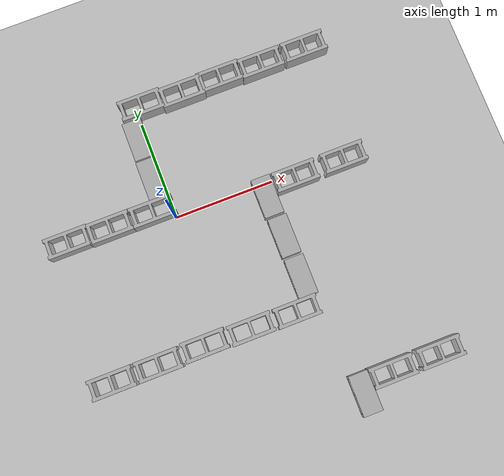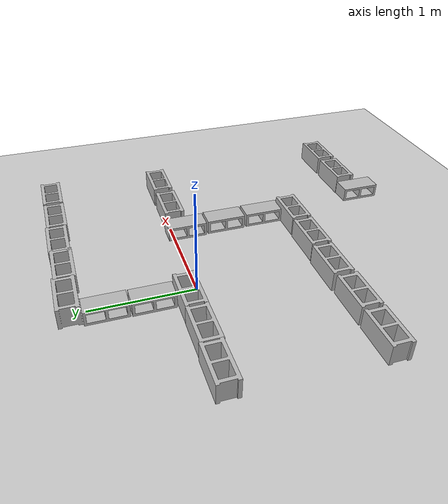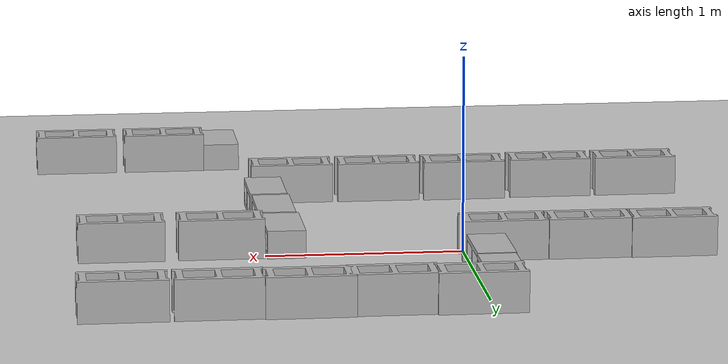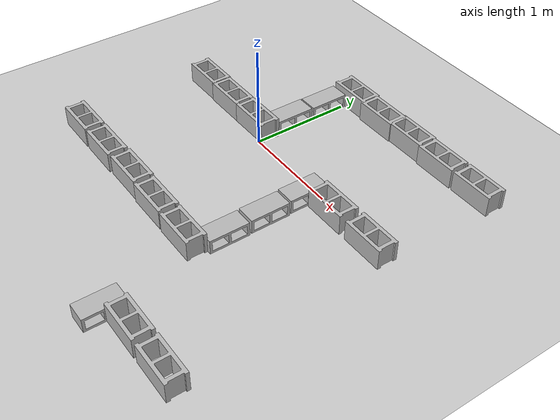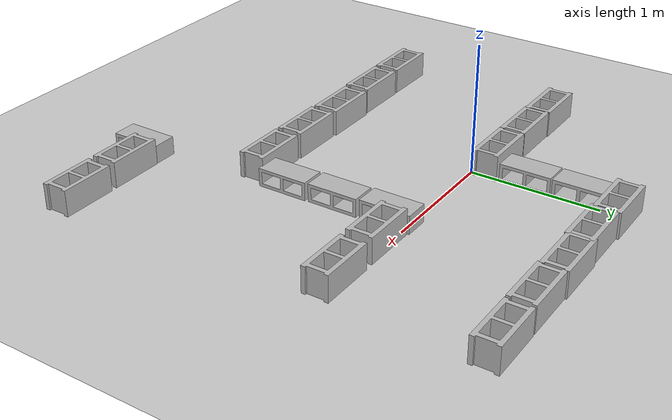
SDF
<sdf version="1.7">
 <world name="default">
  <model name="ground_plane">
   <static>1</static>
   <link name="link">
    <collision name="collision">
     <geometry><plane><normal>0 0 1</normal><size>100 100</size></plane></geometry>
     <surface>
      <contact><collide_bitmask>65535</collide_bitmask></contact>
      <friction><ode><mu>100</mu><mu2>50</mu2></ode></friction>
     </surface>
    </collision>
    <visual name="visual">
     <cast_shadows>0</cast_shadows>
     <geometry><plane><normal>0 0 1</normal><size>100 100</size></plane></geometry>
     <material>
      <script><uri>file://media/materials/scripts/gazebo.material</uri><name>Gazebo/Grey</name></script>
     </material>
    </visual>
   </link>
  </model>
  <model name="cinder_block">
   <link name="link">
    <inertial>
     <pose>0 0 0.1016 0 -0 0</pose>
     <mass>5</mass>
     <inertia>
      <ixx>0.028705</ixx>
      <ixy>0</ixy>
      <iyy>0.073708</iyy>
      <ixz>0</ixz>
      <iyz>0</iyz>
      <izz>0.06908</izz>
     </inertia>
    </inertial>
    <visual name="visual">
     <geometry><mesh><uri>model://cinder_block/meshes/cinder_block.dae</uri></mesh></geometry>
    </visual>
    <collision name="left">
     <pose>0 -0.08465 0.1016 0 -0 0</pose>
     <geometry><box><size>0.43495 0.0339 0.2032</size></box></geometry>
     <surface>
      <contact><ode><max_vel>0.1</max_vel><min_depth>0.001</min_depth></ode></contact>
      <friction><ode><mu>1</mu><mu2>1</mu2></ode></friction>
     </surface>
    </collision>
    <collision name="right">
     <pose>0 0.08465 0.1016 0 -0 0</pose>
     <geometry><box><size>0.43495 0.0339 0.2032</size></box></geometry>
     <surface>
      <contact><ode><max_vel>0.1</max_vel><min_depth>0.001</min_depth></ode></contact>
      <friction><ode><mu>1</mu><mu2>1</mu2></ode></friction>
     </surface>
    </collision>
    <collision name="front">
     <pose>0.18625 0 0.1016 0 -0 0</pose>
     <geometry><box><size>0.0339 0.1354 0.203</size></box></geometry>
     <surface>
      <contact><ode><max_vel>0.1</max_vel><min_depth>0.001</min_depth></ode></contact>
      <friction><ode><mu>1</mu><mu2>1</mu2></ode></friction>
     </surface>
    </collision>
    <collision name="middle">
     <pose>0 0 0.1016 0 -0 0</pose>
     <geometry><box><size>0.0339 0.1354 0.203</size></box></geometry>
     <surface>
      <contact><ode><max_vel>0.1</max_vel><min_depth>0.001</min_depth></ode></contact>
      <friction><ode><mu>1</mu><mu2>1</mu2></ode></friction>
     </surface>
    </collision>
    <collision name="back">
     <pose>-0.18625 0 0.1016 0 -0 0</pose>
     <geometry><box><size>0.0339 0.1354 0.203</size></box></geometry>
     <surface>
      <contact><ode><max_vel>0.1</max_vel><min_depth>0.001</min_depth></ode></contact>
      <friction><ode><mu>1</mu><mu2>1</mu2></ode></friction>
     </surface>
    </collision>
   </link>
   <pose>-0.166078 -1.2573 0 0 -0 0</pose>
  </model>
  <model name="cinder_block_0">
   <link name="link">
    <inertial>
     <pose>0 0 0.1016 0 -0 0</pose>
     <mass>5</mass>
     <inertia>
      <ixx>0.028705</ixx>
      <ixy>0</ixy>
      <iyy>0.073708</iyy>
      <ixz>0</ixz>
      <iyz>0</iyz>
      <izz>0.06908</izz>
     </inertia>
    </inertial>
    <visual name="visual">
     <geometry><mesh><uri>model://cinder_block/meshes/cinder_block.dae</uri></mesh></geometry>
    </visual>
    <collision name="left">
     <pose>0 -0.08465 0.1016 0 -0 0</pose>
     <geometry><box><size>0.43495 0.0339 0.2032</size></box></geometry>
     <surface>
      <contact><ode><max_vel>0.1</max_vel><min_depth>0.001</min_depth></ode></contact>
      <friction><ode><mu>1</mu><mu2>1</mu2></ode></friction>
     </surface>
    </collision>
    <collision name="right">
     <pose>0 0.08465 0.1016 0 -0 0</pose>
     <geometry><box><size>0.43495 0.0339 0.2032</size></box></geometry>
     <surface>
      <contact><ode><max_vel>0.1</max_vel><min_depth>0.001</min_depth></ode></contact>
      <friction><ode><mu>1</mu><mu2>1</mu2></ode></friction>
     </surface>
    </collision>
    <collision name="front">
     <pose>0.18625 0 0.1016 0 -0 0</pose>
     <geometry><box><size>0.0339 0.1354 0.203</size></box></geometry>
     <surface>
      <contact><ode><max_vel>0.1</max_vel><min_depth>0.001</min_depth></ode></contact>
      <friction><ode><mu>1</mu><mu2>1</mu2></ode></friction>
     </surface>
    </collision>
    <collision name="middle">
     <pose>0 0 0.1016 0 -0 0</pose>
     <geometry><box><size>0.0339 0.1354 0.203</size></box></geometry>
     <surface>
      <contact><ode><max_vel>0.1</max_vel><min_depth>0.001</min_depth></ode></contact>
      <friction><ode><mu>1</mu><mu2>1</mu2></ode></friction>
     </surface>
    </collision>
    <collision name="back">
     <pose>-0.18625 0 0.1016 0 -0 0</pose>
     <geometry><box><size>0.0339 0.1354 0.203</size></box></geometry>
     <surface>
      <contact><ode><max_vel>0.1</max_vel><min_depth>0.001</min_depth></ode></contact>
      <friction><ode><mu>1</mu><mu2>1</mu2></ode></friction>
     </surface>
    </collision>
   </link>
   <pose>-0.632446 -1.26918 0 0 -0 0</pose>
  </model>
  <model name="cinder_block_1">
   <link name="link">
    <inertial>
     <pose>0 0 0.1016 0 -0 0</pose>
     <mass>5</mass>
     <inertia>
      <ixx>0.028705</ixx>
      <ixy>0</ixy>
      <iyy>0.073708</iyy>
      <ixz>0</ixz>
      <iyz>0</iyz>
      <izz>0.06908</izz>
     </inertia>
    </inertial>
    <visual name="visual">
     <geometry><mesh><uri>model://cinder_block/meshes/cinder_block.dae</uri></mesh></geometry>
    </visual>
    <collision name="left">
     <pose>0 -0.08465 0.1016 0 -0 0</pose>
     <geometry><box><size>0.43495 0.0339 0.2032</size></box></geometry>
     <surface>
      <contact><ode><max_vel>0.1</max_vel><min_depth>0.001</min_depth></ode></contact>
      <friction><ode><mu>1</mu><mu2>1</mu2></ode></friction>
     </surface>
    </collision>
    <collision name="right">
     <pose>0 0.08465 0.1016 0 -0 0</pose>
     <geometry><box><size>0.43495 0.0339 0.2032</size></box></geometry>
     <surface>
      <contact><ode><max_vel>0.1</max_vel><min_depth>0.001</min_depth></ode></contact>
      <friction><ode><mu>1</mu><mu2>1</mu2></ode></friction>
     </surface>
    </collision>
    <collision name="front">
     <pose>0.18625 0 0.1016 0 -0 0</pose>
     <geometry><box><size>0.0339 0.1354 0.203</size></box></geometry>
     <surface>
      <contact><ode><max_vel>0.1</max_vel><min_depth>0.001</min_depth></ode></contact>
      <friction><ode><mu>1</mu><mu2>1</mu2></ode></friction>
     </surface>
    </collision>
    <collision name="middle">
     <pose>0 0 0.1016 0 -0 0</pose>
     <geometry><box><size>0.0339 0.1354 0.203</size></box></geometry>
     <surface>
      <contact><ode><max_vel>0.1</max_vel><min_depth>0.001</min_depth></ode></contact>
      <friction><ode><mu>1</mu><mu2>1</mu2></ode></friction>
     </surface>
    </collision>
    <collision name="back">
     <pose>-0.18625 0 0.1016 0 -0 0</pose>
     <geometry><box><size>0.0339 0.1354 0.203</size></box></geometry>
     <surface>
      <contact><ode><max_vel>0.1</max_vel><min_depth>0.001</min_depth></ode></contact>
      <friction><ode><mu>1</mu><mu2>1</mu2></ode></friction>
     </surface>
    </collision>
   </link>
   <pose>0.293561 -1.26789 0 0 -0 0</pose>
  </model>
  <model name="cinder_block_2">
   <link name="link">
    <inertial>
     <pose>0 0 0.1016 0 -0 0</pose>
     <mass>5</mass>
     <inertia>
      <ixx>0.028705</ixx>
      <ixy>0</ixy>
      <iyy>0.073708</iyy>
      <ixz>0</ixz>
      <iyz>0</iyz>
      <izz>0.06908</izz>
     </inertia>
    </inertial>
    <visual name="visual">
     <geometry><mesh><uri>model://cinder_block/meshes/cinder_block.dae</uri></mesh></geometry>
    </visual>
    <collision name="left">
     <pose>0 -0.08465 0.1016 0 -0 0</pose>
     <geometry><box><size>0.43495 0.0339 0.2032</size></box></geometry>
     <surface>
      <contact><ode><max_vel>0.1</max_vel><min_depth>0.001</min_depth></ode></contact>
      <friction><ode><mu>1</mu><mu2>1</mu2></ode></friction>
     </surface>
    </collision>
    <collision name="right">
     <pose>0 0.08465 0.1016 0 -0 0</pose>
     <geometry><box><size>0.43495 0.0339 0.2032</size></box></geometry>
     <surface>
      <contact><ode><max_vel>0.1</max_vel><min_depth>0.001</min_depth></ode></contact>
      <friction><ode><mu>1</mu><mu2>1</mu2></ode></friction>
     </surface>
    </collision>
    <collision name="front">
     <pose>0.18625 0 0.1016 0 -0 0</pose>
     <geometry><box><size>0.0339 0.1354 0.203</size></box></geometry>
     <surface>
      <contact><ode><max_vel>0.1</max_vel><min_depth>0.001</min_depth></ode></contact>
      <friction><ode><mu>1</mu><mu2>1</mu2></ode></friction>
     </surface>
    </collision>
    <collision name="middle">
     <pose>0 0 0.1016 0 -0 0</pose>
     <geometry><box><size>0.0339 0.1354 0.203</size></box></geometry>
     <surface>
      <contact><ode><max_vel>0.1</max_vel><min_depth>0.001</min_depth></ode></contact>
      <friction><ode><mu>1</mu><mu2>1</mu2></ode></friction>
     </surface>
    </collision>
    <collision name="back">
     <pose>-0.18625 0 0.1016 0 -0 0</pose>
     <geometry><box><size>0.0339 0.1354 0.203</size></box></geometry>
     <surface>
      <contact><ode><max_vel>0.1</max_vel><min_depth>0.001</min_depth></ode></contact>
      <friction><ode><mu>1</mu><mu2>1</mu2></ode></friction>
     </surface>
    </collision>
   </link>
   <pose>0.755754 -1.27256 0 0 -0 0</pose>
  </model>
  <model name="cinder_block_2_0">
   <link name="link">
    <inertial>
     <pose>0 0 0.071438 0 -0 0</pose>
     <mass>5</mass>
     <inertia>
      <ixx>0.06908</ixx>
      <ixy>0</ixy>
      <iyy>0.028705</iyy>
      <ixz>0</ixz>
      <iyz>0</iyz>
      <izz>0.073708</izz>
     </inertia>
    </inertial>
    <visual name="visual">
     <geometry><mesh><uri>model://cinder_block_2/meshes/cinder_block.dae</uri></mesh></geometry>
    </visual>
    <collision name="top">
     <pose>0 0 0.130175 0 -0 0</pose>
     <geometry><box><size>0.19368 0.396875 0.0254</size></box></geometry>
     <surface>
      <contact><ode><max_vel>0.1</max_vel><min_depth>0.001</min_depth></ode></contact>
      <friction><ode><mu>1</mu><mu2>1</mu2></ode></friction>
     </surface>
    </collision>
    <collision name="bottom">
     <pose>0 0 0.0127 0 -0 0</pose>
     <geometry><box><size>0.19368 0.396875 0.0254</size></box></geometry>
     <surface>
      <contact><ode><max_vel>0.1</max_vel><min_depth>0.001</min_depth></ode></contact>
      <friction><ode><mu>1</mu><mu2>1</mu2></ode></friction>
     </surface>
    </collision>
    <collision name="left">
     <pose>0 -0.185738 0.071438 0 -0 0</pose>
     <geometry><box><size>0.19368 0.0254 0.092075</size></box></geometry>
     <surface>
      <contact><ode><max_vel>0.1</max_vel><min_depth>0.001</min_depth></ode></contact>
      <friction><ode><mu>1</mu><mu2>1</mu2></ode></friction>
     </surface>
    </collision>
    <collision name="right">
     <pose>0 0.185738 0.071438 0 -0 0</pose>
     <geometry><box><size>0.19368 0.0254 0.092075</size></box></geometry>
     <surface>
      <contact><ode><max_vel>0.1</max_vel><min_depth>0.001</min_depth></ode></contact>
      <friction><ode><mu>1</mu><mu2>1</mu2></ode></friction>
     </surface>
    </collision>
    <collision name="middle">
     <pose>0 0 0.071438 0 -0 0</pose>
     <geometry><box><size>0.19368 0.0254 0.092075</size></box></geometry>
     <surface>
      <contact><ode><max_vel>0.1</max_vel><min_depth>0.001</min_depth></ode></contact>
      <friction><ode><mu>1</mu><mu2>1</mu2></ode></friction>
     </surface>
    </collision>
   </link>
   <pose>0.915039 -0.977644 0 0 -0 0</pose>
  </model>
  <model name="cinder_block_2_1">
   <link name="link">
    <inertial>
     <pose>0 0 0.071438 0 -0 0</pose>
     <mass>5</mass>
     <inertia>
      <ixx>0.06908</ixx>
      <ixy>0</ixy>
      <iyy>0.028705</iyy>
      <ixz>0</ixz>
      <iyz>0</iyz>
      <izz>0.073708</izz>
     </inertia>
    </inertial>
    <visual name="visual">
     <geometry><mesh><uri>model://cinder_block_2/meshes/cinder_block.dae</uri></mesh></geometry>
    </visual>
    <collision name="top">
     <pose>0 0 0.130175 0 -0 0</pose>
     <geometry><box><size>0.19368 0.396875 0.0254</size></box></geometry>
     <surface>
      <contact><ode><max_vel>0.1</max_vel><min_depth>0.001</min_depth></ode></contact>
      <friction><ode><mu>1</mu><mu2>1</mu2></ode></friction>
     </surface>
    </collision>
    <collision name="bottom">
     <pose>0 0 0.0127 0 -0 0</pose>
     <geometry><box><size>0.19368 0.396875 0.0254</size></box></geometry>
     <surface>
      <contact><ode><max_vel>0.1</max_vel><min_depth>0.001</min_depth></ode></contact>
      <friction><ode><mu>1</mu><mu2>1</mu2></ode></friction>
     </surface>
    </collision>
    <collision name="left">
     <pose>0 -0.185738 0.071438 0 -0 0</pose>
     <geometry><box><size>0.19368 0.0254 0.092075</size></box></geometry>
     <surface>
      <contact><ode><max_vel>0.1</max_vel><min_depth>0.001</min_depth></ode></contact>
      <friction><ode><mu>1</mu><mu2>1</mu2></ode></friction>
     </surface>
    </collision>
    <collision name="right">
     <pose>0 0.185738 0.071438 0 -0 0</pose>
     <geometry><box><size>0.19368 0.0254 0.092075</size></box></geometry>
     <surface>
      <contact><ode><max_vel>0.1</max_vel><min_depth>0.001</min_depth></ode></contact>
      <friction><ode><mu>1</mu><mu2>1</mu2></ode></friction>
     </surface>
    </collision>
    <collision name="middle">
     <pose>0 0 0.071438 0 -0 0</pose>
     <geometry><box><size>0.19368 0.0254 0.092075</size></box></geometry>
     <surface>
      <contact><ode><max_vel>0.1</max_vel><min_depth>0.001</min_depth></ode></contact>
      <friction><ode><mu>1</mu><mu2>1</mu2></ode></friction>
     </surface>
    </collision>
   </link>
   <pose>0.90795 -0.557757 0 0 -0 0</pose>
  </model>
  <model name="cinder_block_2_2">
   <link name="link">
    <inertial>
     <pose>0 0 0.071438 0 -0 0</pose>
     <mass>5</mass>
     <inertia>
      <ixx>0.06908</ixx>
      <ixy>0</ixy>
      <iyy>0.028705</iyy>
      <ixz>0</ixz>
      <iyz>0</iyz>
      <izz>0.073708</izz>
     </inertia>
    </inertial>
    <visual name="visual">
     <geometry><mesh><uri>model://cinder_block_2/meshes/cinder_block.dae</uri></mesh></geometry>
    </visual>
    <collision name="top">
     <pose>0 0 0.130175 0 -0 0</pose>
     <geometry><box><size>0.19368 0.396875 0.0254</size></box></geometry>
     <surface>
      <contact><ode><max_vel>0.1</max_vel><min_depth>0.001</min_depth></ode></contact>
      <friction><ode><mu>1</mu><mu2>1</mu2></ode></friction>
     </surface>
    </collision>
    <collision name="bottom">
     <pose>0 0 0.0127 0 -0 0</pose>
     <geometry><box><size>0.19368 0.396875 0.0254</size></box></geometry>
     <surface>
      <contact><ode><max_vel>0.1</max_vel><min_depth>0.001</min_depth></ode></contact>
      <friction><ode><mu>1</mu><mu2>1</mu2></ode></friction>
     </surface>
    </collision>
    <collision name="left">
     <pose>0 -0.185738 0.071438 0 -0 0</pose>
     <geometry><box><size>0.19368 0.0254 0.092075</size></box></geometry>
     <surface>
      <contact><ode><max_vel>0.1</max_vel><min_depth>0.001</min_depth></ode></contact>
      <friction><ode><mu>1</mu><mu2>1</mu2></ode></friction>
     </surface>
    </collision>
    <collision name="right">
     <pose>0 0.185738 0.071438 0 -0 0</pose>
     <geometry><box><size>0.19368 0.0254 0.092075</size></box></geometry>
     <surface>
      <contact><ode><max_vel>0.1</max_vel><min_depth>0.001</min_depth></ode></contact>
      <friction><ode><mu>1</mu><mu2>1</mu2></ode></friction>
     </surface>
    </collision>
    <collision name="middle">
     <pose>0 0 0.071438 0 -0 0</pose>
     <geometry><box><size>0.19368 0.0254 0.092075</size></box></geometry>
     <surface>
      <contact><ode><max_vel>0.1</max_vel><min_depth>0.001</min_depth></ode></contact>
      <friction><ode><mu>1</mu><mu2>1</mu2></ode></friction>
     </surface>
    </collision>
   </link>
   <pose>0.896648 -0.140806 0 0 -0 0</pose>
  </model>
  <model name="cinder_block_3">
   <link name="link">
    <inertial>
     <pose>0 0 0.1016 0 -0 0</pose>
     <mass>5</mass>
     <inertia>
      <ixx>0.028705</ixx>
      <ixy>0</ixy>
      <iyy>0.073708</iyy>
      <ixz>0</ixz>
      <iyz>0</iyz>
      <izz>0.06908</izz>
     </inertia>
    </inertial>
    <visual name="visual">
     <geometry><mesh><uri>model://cinder_block/meshes/cinder_block.dae</uri></mesh></geometry>
    </visual>
    <collision name="left">
     <pose>0 -0.08465 0.1016 0 -0 0</pose>
     <geometry><box><size>0.43495 0.0339 0.2032</size></box></geometry>
     <surface>
      <contact><ode><max_vel>0.1</max_vel><min_depth>0.001</min_depth></ode></contact>
      <friction><ode><mu>1</mu><mu2>1</mu2></ode></friction>
     </surface>
    </collision>
    <collision name="right">
     <pose>0 0.08465 0.1016 0 -0 0</pose>
     <geometry><box><size>0.43495 0.0339 0.2032</size></box></geometry>
     <surface>
      <contact><ode><max_vel>0.1</max_vel><min_depth>0.001</min_depth></ode></contact>
      <friction><ode><mu>1</mu><mu2>1</mu2></ode></friction>
     </surface>
    </collision>
    <collision name="front">
     <pose>0.18625 0 0.1016 0 -0 0</pose>
     <geometry><box><size>0.0339 0.1354 0.203</size></box></geometry>
     <surface>
      <contact><ode><max_vel>0.1</max_vel><min_depth>0.001</min_depth></ode></contact>
      <friction><ode><mu>1</mu><mu2>1</mu2></ode></friction>
     </surface>
    </collision>
    <collision name="middle">
     <pose>0 0 0.1016 0 -0 0</pose>
     <geometry><box><size>0.0339 0.1354 0.203</size></box></geometry>
     <surface>
      <contact><ode><max_vel>0.1</max_vel><min_depth>0.001</min_depth></ode></contact>
      <friction><ode><mu>1</mu><mu2>1</mu2></ode></friction>
     </surface>
    </collision>
    <collision name="back">
     <pose>-0.18625 0 0.1016 0 -0 0</pose>
     <geometry><box><size>0.0339 0.1354 0.203</size></box></geometry>
     <surface>
      <contact><ode><max_vel>0.1</max_vel><min_depth>0.001</min_depth></ode></contact>
      <friction><ode><mu>1</mu><mu2>1</mu2></ode></friction>
     </surface>
    </collision>
   </link>
   <pose>1.22059 -0.056694 0 0 -0 0</pose>
  </model>
  <model name="cinder_block_4">
   <link name="link">
    <inertial>
     <pose>0 0 0.1016 0 -0 0</pose>
     <mass>5</mass>
     <inertia>
      <ixx>0.028705</ixx>
      <ixy>0</ixy>
      <iyy>0.073708</iyy>
      <ixz>0</ixz>
      <iyz>0</iyz>
      <izz>0.06908</izz>
     </inertia>
    </inertial>
    <visual name="visual">
     <geometry><mesh><uri>model://cinder_block/meshes/cinder_block.dae</uri></mesh></geometry>
    </visual>
    <collision name="left">
     <pose>0 -0.08465 0.1016 0 -0 0</pose>
     <geometry><box><size>0.43495 0.0339 0.2032</size></box></geometry>
     <surface>
      <contact><ode><max_vel>0.1</max_vel><min_depth>0.001</min_depth></ode></contact>
      <friction><ode><mu>1</mu><mu2>1</mu2></ode></friction>
     </surface>
    </collision>
    <collision name="right">
     <pose>0 0.08465 0.1016 0 -0 0</pose>
     <geometry><box><size>0.43495 0.0339 0.2032</size></box></geometry>
     <surface>
      <contact><ode><max_vel>0.1</max_vel><min_depth>0.001</min_depth></ode></contact>
      <friction><ode><mu>1</mu><mu2>1</mu2></ode></friction>
     </surface>
    </collision>
    <collision name="front">
     <pose>0.18625 0 0.1016 0 -0 0</pose>
     <geometry><box><size>0.0339 0.1354 0.203</size></box></geometry>
     <surface>
      <contact><ode><max_vel>0.1</max_vel><min_depth>0.001</min_depth></ode></contact>
      <friction><ode><mu>1</mu><mu2>1</mu2></ode></friction>
     </surface>
    </collision>
    <collision name="middle">
     <pose>0 0 0.1016 0 -0 0</pose>
     <geometry><box><size>0.0339 0.1354 0.203</size></box></geometry>
     <surface>
      <contact><ode><max_vel>0.1</max_vel><min_depth>0.001</min_depth></ode></contact>
      <friction><ode><mu>1</mu><mu2>1</mu2></ode></friction>
     </surface>
    </collision>
    <collision name="back">
     <pose>-0.18625 0 0.1016 0 -0 0</pose>
     <geometry><box><size>0.0339 0.1354 0.203</size></box></geometry>
     <surface>
      <contact><ode><max_vel>0.1</max_vel><min_depth>0.001</min_depth></ode></contact>
      <friction><ode><mu>1</mu><mu2>1</mu2></ode></friction>
     </surface>
    </collision>
   </link>
   <pose>1.72291 -0.053168 0 0 -0 0</pose>
  </model>
  <model name="cinder_block_9">
   <link name="link">
    <inertial>
     <pose>0 0 0.1016 0 -0 0</pose>
     <mass>5</mass>
     <inertia>
      <ixx>0.028705</ixx>
      <ixy>0</ixy>
      <iyy>0.073708</iyy>
      <ixz>0</ixz>
      <iyz>0</iyz>
      <izz>0.06908</izz>
     </inertia>
    </inertial>
    <visual name="visual">
     <geometry><mesh><uri>model://cinder_block/meshes/cinder_block.dae</uri></mesh></geometry>
    </visual>
    <collision name="left">
     <pose>0 -0.08465 0.1016 0 -0 0</pose>
     <geometry><box><size>0.43495 0.0339 0.2032</size></box></geometry>
     <surface>
      <contact><ode><max_vel>0.1</max_vel><min_depth>0.001</min_depth></ode></contact>
      <friction><ode><mu>1</mu><mu2>1</mu2></ode></friction>
     </surface>
    </collision>
    <collision name="right">
     <pose>0 0.08465 0.1016 0 -0 0</pose>
     <geometry><box><size>0.43495 0.0339 0.2032</size></box></geometry>
     <surface>
      <contact><ode><max_vel>0.1</max_vel><min_depth>0.001</min_depth></ode></contact>
      <friction><ode><mu>1</mu><mu2>1</mu2></ode></friction>
     </surface>
    </collision>
    <collision name="front">
     <pose>0.18625 0 0.1016 0 -0 0</pose>
     <geometry><box><size>0.0339 0.1354 0.203</size></box></geometry>
     <surface>
      <contact><ode><max_vel>0.1</max_vel><min_depth>0.001</min_depth></ode></contact>
      <friction><ode><mu>1</mu><mu2>1</mu2></ode></friction>
     </surface>
    </collision>
    <collision name="middle">
     <pose>0 0 0.1016 0 -0 0</pose>
     <geometry><box><size>0.0339 0.1354 0.203</size></box></geometry>
     <surface>
      <contact><ode><max_vel>0.1</max_vel><min_depth>0.001</min_depth></ode></contact>
      <friction><ode><mu>1</mu><mu2>1</mu2></ode></friction>
     </surface>
    </collision>
    <collision name="back">
     <pose>-0.18625 0 0.1016 0 -0 0</pose>
     <geometry><box><size>0.0339 0.1354 0.203</size></box></geometry>
     <surface>
      <contact><ode><max_vel>0.1</max_vel><min_depth>0.001</min_depth></ode></contact>
      <friction><ode><mu>1</mu><mu2>1</mu2></ode></friction>
     </surface>
    </collision>
   </link>
   <pose>1.86528 -2.10568 0 0 -0 0</pose>
  </model>
  <model name="cinder_block_10">
   <link name="link">
    <inertial>
     <pose>0 0 0.1016 0 -0 0</pose>
     <mass>5</mass>
     <inertia>
      <ixx>0.028705</ixx>
      <ixy>0</ixy>
      <iyy>0.073708</iyy>
      <ixz>0</ixz>
      <iyz>0</iyz>
      <izz>0.06908</izz>
     </inertia>
    </inertial>
    <visual name="visual">
     <geometry><mesh><uri>model://cinder_block/meshes/cinder_block.dae</uri></mesh></geometry>
    </visual>
    <collision name="left">
     <pose>0 -0.08465 0.1016 0 -0 0</pose>
     <geometry><box><size>0.43495 0.0339 0.2032</size></box></geometry>
     <surface>
      <contact><ode><max_vel>0.1</max_vel><min_depth>0.001</min_depth></ode></contact>
      <friction><ode><mu>1</mu><mu2>1</mu2></ode></friction>
     </surface>
    </collision>
    <collision name="right">
     <pose>0 0.08465 0.1016 0 -0 0</pose>
     <geometry><box><size>0.43495 0.0339 0.2032</size></box></geometry>
     <surface>
      <contact><ode><max_vel>0.1</max_vel><min_depth>0.001</min_depth></ode></contact>
      <friction><ode><mu>1</mu><mu2>1</mu2></ode></friction>
     </surface>
    </collision>
    <collision name="front">
     <pose>0.18625 0 0.1016 0 -0 0</pose>
     <geometry><box><size>0.0339 0.1354 0.203</size></box></geometry>
     <surface>
      <contact><ode><max_vel>0.1</max_vel><min_depth>0.001</min_depth></ode></contact>
      <friction><ode><mu>1</mu><mu2>1</mu2></ode></friction>
     </surface>
    </collision>
    <collision name="middle">
     <pose>0 0 0.1016 0 -0 0</pose>
     <geometry><box><size>0.0339 0.1354 0.203</size></box></geometry>
     <surface>
      <contact><ode><max_vel>0.1</max_vel><min_depth>0.001</min_depth></ode></contact>
      <friction><ode><mu>1</mu><mu2>1</mu2></ode></friction>
     </surface>
    </collision>
    <collision name="back">
     <pose>-0.18625 0 0.1016 0 -0 0</pose>
     <geometry><box><size>0.0339 0.1354 0.203</size></box></geometry>
     <surface>
      <contact><ode><max_vel>0.1</max_vel><min_depth>0.001</min_depth></ode></contact>
      <friction><ode><mu>1</mu><mu2>1</mu2></ode></friction>
     </surface>
    </collision>
   </link>
   <pose>1.38491 -2.10697 0 0 -0 0</pose>
  </model>
  <model name="cinder_block_2_8">
   <link name="link">
    <inertial>
     <pose>0 0 0.071438 0 -0 0</pose>
     <mass>5</mass>
     <inertia>
      <ixx>0.06908</ixx>
      <ixy>0</ixy>
      <iyy>0.028705</iyy>
      <ixz>0</ixz>
      <iyz>0</iyz>
      <izz>0.073708</izz>
     </inertia>
    </inertial>
    <visual name="visual">
     <geometry><mesh><uri>model://cinder_block_2/meshes/cinder_block.dae</uri></mesh></geometry>
    </visual>
    <collision name="top">
     <pose>0 0 0.130175 0 -0 0</pose>
     <geometry><box><size>0.19368 0.396875 0.0254</size></box></geometry>
     <surface>
      <contact><ode><max_vel>0.1</max_vel><min_depth>0.001</min_depth></ode></contact>
      <friction><ode><mu>1</mu><mu2>1</mu2></ode></friction>
     </surface>
    </collision>
    <collision name="bottom">
     <pose>0 0 0.0127 0 -0 0</pose>
     <geometry><box><size>0.19368 0.396875 0.0254</size></box></geometry>
     <surface>
      <contact><ode><max_vel>0.1</max_vel><min_depth>0.001</min_depth></ode></contact>
      <friction><ode><mu>1</mu><mu2>1</mu2></ode></friction>
     </surface>
    </collision>
    <collision name="left">
     <pose>0 -0.185738 0.071438 0 -0 0</pose>
     <geometry><box><size>0.19368 0.0254 0.092075</size></box></geometry>
     <surface>
      <contact><ode><max_vel>0.1</max_vel><min_depth>0.001</min_depth></ode></contact>
      <friction><ode><mu>1</mu><mu2>1</mu2></ode></friction>
     </surface>
    </collision>
    <collision name="right">
     <pose>0 0.185738 0.071438 0 -0 0</pose>
     <geometry><box><size>0.19368 0.0254 0.092075</size></box></geometry>
     <surface>
      <contact><ode><max_vel>0.1</max_vel><min_depth>0.001</min_depth></ode></contact>
      <friction><ode><mu>1</mu><mu2>1</mu2></ode></friction>
     </surface>
    </collision>
    <collision name="middle">
     <pose>0 0 0.071438 0 -0 0</pose>
     <geometry><box><size>0.19368 0.0254 0.092075</size></box></geometry>
     <surface>
      <contact><ode><max_vel>0.1</max_vel><min_depth>0.001</min_depth></ode></contact>
      <friction><ode><mu>1</mu><mu2>1</mu2></ode></friction>
     </surface>
    </collision>
   </link>
   <pose>1.07228 -2.20784 0 0 -0 0</pose>
  </model>
  <model name="cinder_block_15">
   <link name="link">
    <inertial>
     <pose>0 0 0.1016 0 -0 0</pose>
     <mass>5</mass>
     <inertia>
      <ixx>0.028705</ixx>
      <ixy>0</ixy>
      <iyy>0.073708</iyy>
      <ixz>0</ixz>
      <iyz>0</iyz>
      <izz>0.06908</izz>
     </inertia>
    </inertial>
    <visual name="visual">
     <geometry><mesh><uri>model://cinder_block/meshes/cinder_block.dae</uri></mesh></geometry>
    </visual>
    <collision name="left">
     <pose>0 -0.08465 0.1016 0 -0 0</pose>
     <geometry><box><size>0.43495 0.0339 0.2032</size></box></geometry>
     <surface>
      <contact><ode><max_vel>0.1</max_vel><min_depth>0.001</min_depth></ode></contact>
      <friction><ode><mu>1</mu><mu2>1</mu2></ode></friction>
     </surface>
    </collision>
    <collision name="right">
     <pose>0 0.08465 0.1016 0 -0 0</pose>
     <geometry><box><size>0.43495 0.0339 0.2032</size></box></geometry>
     <surface>
      <contact><ode><max_vel>0.1</max_vel><min_depth>0.001</min_depth></ode></contact>
      <friction><ode><mu>1</mu><mu2>1</mu2></ode></friction>
     </surface>
    </collision>
    <collision name="front">
     <pose>0.18625 0 0.1016 0 -0 0</pose>
     <geometry><box><size>0.0339 0.1354 0.203</size></box></geometry>
     <surface>
      <contact><ode><max_vel>0.1</max_vel><min_depth>0.001</min_depth></ode></contact>
      <friction><ode><mu>1</mu><mu2>1</mu2></ode></friction>
     </surface>
    </collision>
    <collision name="middle">
     <pose>0 0 0.1016 0 -0 0</pose>
     <geometry><box><size>0.0339 0.1354 0.203</size></box></geometry>
     <surface>
      <contact><ode><max_vel>0.1</max_vel><min_depth>0.001</min_depth></ode></contact>
      <friction><ode><mu>1</mu><mu2>1</mu2></ode></friction>
     </surface>
    </collision>
    <collision name="back">
     <pose>-0.18625 0 0.1016 0 -0 0</pose>
     <geometry><box><size>0.0339 0.1354 0.203</size></box></geometry>
     <surface>
      <contact><ode><max_vel>0.1</max_vel><min_depth>0.001</min_depth></ode></contact>
      <friction><ode><mu>1</mu><mu2>1</mu2></ode></friction>
     </surface>
    </collision>
   </link>
   <pose>-1.09369 -1.27045 0 0 -0 0</pose>
  </model>
  <model name="cinder_block_16">
   <link name="link">
    <inertial>
     <pose>0 0 0.1016 0 -0 0</pose>
     <mass>5</mass>
     <inertia>
      <ixx>0.028705</ixx>
      <ixy>0</ixy>
      <iyy>0.073708</iyy>
      <ixz>0</ixz>
      <iyz>0</iyz>
      <izz>0.06908</izz>
     </inertia>
    </inertial>
    <visual name="visual">
     <geometry><mesh><uri>model://cinder_block/meshes/cinder_block.dae</uri></mesh></geometry>
    </visual>
    <collision name="left">
     <pose>0 -0.08465 0.1016 0 -0 0</pose>
     <geometry><box><size>0.43495 0.0339 0.2032</size></box></geometry>
     <surface>
      <contact><ode><max_vel>0.1</max_vel><min_depth>0.001</min_depth></ode></contact>
      <friction><ode><mu>1</mu><mu2>1</mu2></ode></friction>
     </surface>
    </collision>
    <collision name="right">
     <pose>0 0.08465 0.1016 0 -0 0</pose>
     <geometry><box><size>0.43495 0.0339 0.2032</size></box></geometry>
     <surface>
      <contact><ode><max_vel>0.1</max_vel><min_depth>0.001</min_depth></ode></contact>
      <friction><ode><mu>1</mu><mu2>1</mu2></ode></friction>
     </surface>
    </collision>
    <collision name="front">
     <pose>0.18625 0 0.1016 0 -0 0</pose>
     <geometry><box><size>0.0339 0.1354 0.203</size></box></geometry>
     <surface>
      <contact><ode><max_vel>0.1</max_vel><min_depth>0.001</min_depth></ode></contact>
      <friction><ode><mu>1</mu><mu2>1</mu2></ode></friction>
     </surface>
    </collision>
    <collision name="middle">
     <pose>0 0 0.1016 0 -0 0</pose>
     <geometry><box><size>0.0339 0.1354 0.203</size></box></geometry>
     <surface>
      <contact><ode><max_vel>0.1</max_vel><min_depth>0.001</min_depth></ode></contact>
      <friction><ode><mu>1</mu><mu2>1</mu2></ode></friction>
     </surface>
    </collision>
    <collision name="back">
     <pose>-0.18625 0 0.1016 0 -0 0</pose>
     <geometry><box><size>0.0339 0.1354 0.203</size></box></geometry>
     <surface>
      <contact><ode><max_vel>0.1</max_vel><min_depth>0.001</min_depth></ode></contact>
      <friction><ode><mu>1</mu><mu2>1</mu2></ode></friction>
     </surface>
    </collision>
   </link>
   <pose>-1.04366 0.122558 0 0 -0 0</pose>
  </model>
  <model name="cinder_block_17">
   <link name="link">
    <inertial>
     <pose>0 0 0.1016 0 -0 0</pose>
     <mass>5</mass>
     <inertia>
      <ixx>0.028705</ixx>
      <ixy>0</ixy>
      <iyy>0.073708</iyy>
      <ixz>0</ixz>
      <iyz>0</iyz>
      <izz>0.06908</izz>
     </inertia>
    </inertial>
    <visual name="visual">
     <geometry><mesh><uri>model://cinder_block/meshes/cinder_block.dae</uri></mesh></geometry>
    </visual>
    <collision name="left">
     <pose>0 -0.08465 0.1016 0 -0 0</pose>
     <geometry><box><size>0.43495 0.0339 0.2032</size></box></geometry>
     <surface>
      <contact><ode><max_vel>0.1</max_vel><min_depth>0.001</min_depth></ode></contact>
      <friction><ode><mu>1</mu><mu2>1</mu2></ode></friction>
     </surface>
    </collision>
    <collision name="right">
     <pose>0 0.08465 0.1016 0 -0 0</pose>
     <geometry><box><size>0.43495 0.0339 0.2032</size></box></geometry>
     <surface>
      <contact><ode><max_vel>0.1</max_vel><min_depth>0.001</min_depth></ode></contact>
      <friction><ode><mu>1</mu><mu2>1</mu2></ode></friction>
     </surface>
    </collision>
    <collision name="front">
     <pose>0.18625 0 0.1016 0 -0 0</pose>
     <geometry><box><size>0.0339 0.1354 0.203</size></box></geometry>
     <surface>
      <contact><ode><max_vel>0.1</max_vel><min_depth>0.001</min_depth></ode></contact>
      <friction><ode><mu>1</mu><mu2>1</mu2></ode></friction>
     </surface>
    </collision>
    <collision name="middle">
     <pose>0 0 0.1016 0 -0 0</pose>
     <geometry><box><size>0.0339 0.1354 0.203</size></box></geometry>
     <surface>
      <contact><ode><max_vel>0.1</max_vel><min_depth>0.001</min_depth></ode></contact>
      <friction><ode><mu>1</mu><mu2>1</mu2></ode></friction>
     </surface>
    </collision>
    <collision name="back">
     <pose>-0.18625 0 0.1016 0 -0 0</pose>
     <geometry><box><size>0.0339 0.1354 0.203</size></box></geometry>
     <surface>
      <contact><ode><max_vel>0.1</max_vel><min_depth>0.001</min_depth></ode></contact>
      <friction><ode><mu>1</mu><mu2>1</mu2></ode></friction>
     </surface>
    </collision>
   </link>
   <pose>-0.624673 0.114779 0 0 -0 0</pose>
  </model>
  <model name="cinder_block_18">
   <link name="link">
    <inertial>
     <pose>0 0 0.1016 0 -0 0</pose>
     <mass>5</mass>
     <inertia>
      <ixx>0.028705</ixx>
      <ixy>0</ixy>
      <iyy>0.073708</iyy>
      <ixz>0</ixz>
      <iyz>0</iyz>
      <izz>0.06908</izz>
     </inertia>
    </inertial>
    <visual name="visual">
     <geometry><mesh><uri>model://cinder_block/meshes/cinder_block.dae</uri></mesh></geometry>
    </visual>
    <collision name="left">
     <pose>0 -0.08465 0.1016 0 -0 0</pose>
     <geometry><box><size>0.43495 0.0339 0.2032</size></box></geometry>
     <surface>
      <contact><ode><max_vel>0.1</max_vel><min_depth>0.001</min_depth></ode></contact>
      <friction><ode><mu>1</mu><mu2>1</mu2></ode></friction>
     </surface>
    </collision>
    <collision name="right">
     <pose>0 0.08465 0.1016 0 -0 0</pose>
     <geometry><box><size>0.43495 0.0339 0.2032</size></box></geometry>
     <surface>
      <contact><ode><max_vel>0.1</max_vel><min_depth>0.001</min_depth></ode></contact>
      <friction><ode><mu>1</mu><mu2>1</mu2></ode></friction>
     </surface>
    </collision>
    <collision name="front">
     <pose>0.18625 0 0.1016 0 -0 0</pose>
     <geometry><box><size>0.0339 0.1354 0.203</size></box></geometry>
     <surface>
      <contact><ode><max_vel>0.1</max_vel><min_depth>0.001</min_depth></ode></contact>
      <friction><ode><mu>1</mu><mu2>1</mu2></ode></friction>
     </surface>
    </collision>
    <collision name="middle">
     <pose>0 0 0.1016 0 -0 0</pose>
     <geometry><box><size>0.0339 0.1354 0.203</size></box></geometry>
     <surface>
      <contact><ode><max_vel>0.1</max_vel><min_depth>0.001</min_depth></ode></contact>
      <friction><ode><mu>1</mu><mu2>1</mu2></ode></friction>
     </surface>
    </collision>
    <collision name="back">
     <pose>-0.18625 0 0.1016 0 -0 0</pose>
     <geometry><box><size>0.0339 0.1354 0.203</size></box></geometry>
     <surface>
      <contact><ode><max_vel>0.1</max_vel><min_depth>0.001</min_depth></ode></contact>
      <friction><ode><mu>1</mu><mu2>1</mu2></ode></friction>
     </surface>
    </collision>
   </link>
   <pose>-0.187856 0.112957 0 0 -0 0</pose>
  </model>
  <model name="cinder_block_2_11">
   <link name="link">
    <inertial>
     <pose>0 0 0.071438 0 -0 0</pose>
     <mass>5</mass>
     <inertia>
      <ixx>0.06908</ixx>
      <ixy>0</ixy>
      <iyy>0.028705</iyy>
      <ixz>0</ixz>
      <iyz>0</iyz>
      <izz>0.073708</izz>
     </inertia>
    </inertial>
    <visual name="visual">
     <geometry><mesh><uri>model://cinder_block_2/meshes/cinder_block.dae</uri></mesh></geometry>
    </visual>
    <collision name="top">
     <pose>0 0 0.130175 0 -0 0</pose>
     <geometry><box><size>0.19368 0.396875 0.0254</size></box></geometry>
     <surface>
      <contact><ode><max_vel>0.1</max_vel><min_depth>0.001</min_depth></ode></contact>
      <friction><ode><mu>1</mu><mu2>1</mu2></ode></friction>
     </surface>
    </collision>
    <collision name="bottom">
     <pose>0 0 0.0127 0 -0 0</pose>
     <geometry><box><size>0.19368 0.396875 0.0254</size></box></geometry>
     <surface>
      <contact><ode><max_vel>0.1</max_vel><min_depth>0.001</min_depth></ode></contact>
      <friction><ode><mu>1</mu><mu2>1</mu2></ode></friction>
     </surface>
    </collision>
    <collision name="left">
     <pose>0 -0.185738 0.071438 0 -0 0</pose>
     <geometry><box><size>0.19368 0.0254 0.092075</size></box></geometry>
     <surface>
      <contact><ode><max_vel>0.1</max_vel><min_depth>0.001</min_depth></ode></contact>
      <friction><ode><mu>1</mu><mu2>1</mu2></ode></friction>
     </surface>
    </collision>
    <collision name="right">
     <pose>0 0.185738 0.071438 0 -0 0</pose>
     <geometry><box><size>0.19368 0.0254 0.092075</size></box></geometry>
     <surface>
      <contact><ode><max_vel>0.1</max_vel><min_depth>0.001</min_depth></ode></contact>
      <friction><ode><mu>1</mu><mu2>1</mu2></ode></friction>
     </surface>
    </collision>
    <collision name="middle">
     <pose>0 0 0.071438 0 -0 0</pose>
     <geometry><box><size>0.19368 0.0254 0.092075</size></box></geometry>
     <surface>
      <contact><ode><max_vel>0.1</max_vel><min_depth>0.001</min_depth></ode></contact>
      <friction><ode><mu>1</mu><mu2>1</mu2></ode></friction>
     </surface>
    </collision>
   </link>
   <pose>-0.08462 0.424293 0 0 -0 0</pose>
  </model>
  <model name="cinder_block_2_12">
   <link name="link">
    <inertial>
     <pose>0 0 0.071438 0 -0 0</pose>
     <mass>5</mass>
     <inertia>
      <ixx>0.06908</ixx>
      <ixy>0</ixy>
      <iyy>0.028705</iyy>
      <ixz>0</ixz>
      <iyz>0</iyz>
      <izz>0.073708</izz>
     </inertia>
    </inertial>
    <visual name="visual">
     <geometry><mesh><uri>model://cinder_block_2/meshes/cinder_block.dae</uri></mesh></geometry>
    </visual>
    <collision name="top">
     <pose>0 0 0.130175 0 -0 0</pose>
     <geometry><box><size>0.19368 0.396875 0.0254</size></box></geometry>
     <surface>
      <contact><ode><max_vel>0.1</max_vel><min_depth>0.001</min_depth></ode></contact>
      <friction><ode><mu>1</mu><mu2>1</mu2></ode></friction>
     </surface>
    </collision>
    <collision name="bottom">
     <pose>0 0 0.0127 0 -0 0</pose>
     <geometry><box><size>0.19368 0.396875 0.0254</size></box></geometry>
     <surface>
      <contact><ode><max_vel>0.1</max_vel><min_depth>0.001</min_depth></ode></contact>
      <friction><ode><mu>1</mu><mu2>1</mu2></ode></friction>
     </surface>
    </collision>
    <collision name="left">
     <pose>0 -0.185738 0.071438 0 -0 0</pose>
     <geometry><box><size>0.19368 0.0254 0.092075</size></box></geometry>
     <surface>
      <contact><ode><max_vel>0.1</max_vel><min_depth>0.001</min_depth></ode></contact>
      <friction><ode><mu>1</mu><mu2>1</mu2></ode></friction>
     </surface>
    </collision>
    <collision name="right">
     <pose>0 0.185738 0.071438 0 -0 0</pose>
     <geometry><box><size>0.19368 0.0254 0.092075</size></box></geometry>
     <surface>
      <contact><ode><max_vel>0.1</max_vel><min_depth>0.001</min_depth></ode></contact>
      <friction><ode><mu>1</mu><mu2>1</mu2></ode></friction>
     </surface>
    </collision>
    <collision name="middle">
     <pose>0 0 0.071438 0 -0 0</pose>
     <geometry><box><size>0.19368 0.0254 0.092075</size></box></geometry>
     <surface>
      <contact><ode><max_vel>0.1</max_vel><min_depth>0.001</min_depth></ode></contact>
      <friction><ode><mu>1</mu><mu2>1</mu2></ode></friction>
     </surface>
    </collision>
   </link>
   <pose>-0.079417 0.83518 0 0 -0 0</pose>
  </model>
  <model name="cinder_block_19">
   <link name="link">
    <inertial>
     <pose>0 0 0.1016 0 -0 0</pose>
     <mass>5</mass>
     <inertia>
      <ixx>0.028705</ixx>
      <ixy>0</ixy>
      <iyy>0.073708</iyy>
      <ixz>0</ixz>
      <iyz>0</iyz>
      <izz>0.06908</izz>
     </inertia>
    </inertial>
    <visual name="visual">
     <geometry><mesh><uri>model://cinder_block/meshes/cinder_block.dae</uri></mesh></geometry>
    </visual>
    <collision name="left">
     <pose>0 -0.08465 0.1016 0 -0 0</pose>
     <geometry><box><size>0.43495 0.0339 0.2032</size></box></geometry>
     <surface>
      <contact><ode><max_vel>0.1</max_vel><min_depth>0.001</min_depth></ode></contact>
      <friction><ode><mu>1</mu><mu2>1</mu2></ode></friction>
     </surface>
    </collision>
    <collision name="right">
     <pose>0 0.08465 0.1016 0 -0 0</pose>
     <geometry><box><size>0.43495 0.0339 0.2032</size></box></geometry>
     <surface>
      <contact><ode><max_vel>0.1</max_vel><min_depth>0.001</min_depth></ode></contact>
      <friction><ode><mu>1</mu><mu2>1</mu2></ode></friction>
     </surface>
    </collision>
    <collision name="front">
     <pose>0.18625 0 0.1016 0 -0 0</pose>
     <geometry><box><size>0.0339 0.1354 0.203</size></box></geometry>
     <surface>
      <contact><ode><max_vel>0.1</max_vel><min_depth>0.001</min_depth></ode></contact>
      <friction><ode><mu>1</mu><mu2>1</mu2></ode></friction>
     </surface>
    </collision>
    <collision name="middle">
     <pose>0 0 0.1016 0 -0 0</pose>
     <geometry><box><size>0.0339 0.1354 0.203</size></box></geometry>
     <surface>
      <contact><ode><max_vel>0.1</max_vel><min_depth>0.001</min_depth></ode></contact>
      <friction><ode><mu>1</mu><mu2>1</mu2></ode></friction>
     </surface>
    </collision>
    <collision name="back">
     <pose>-0.18625 0 0.1016 0 -0 0</pose>
     <geometry><box><size>0.0339 0.1354 0.203</size></box></geometry>
     <surface>
      <contact><ode><max_vel>0.1</max_vel><min_depth>0.001</min_depth></ode></contact>
      <friction><ode><mu>1</mu><mu2>1</mu2></ode></friction>
     </surface>
    </collision>
   </link>
   <pose>0.0673 1.14259 0 0 -0 0</pose>
  </model>
  <model name="cinder_block_20">
   <link name="link">
    <inertial>
     <pose>0 0 0.1016 0 -0 0</pose>
     <mass>5</mass>
     <inertia>
      <ixx>0.028705</ixx>
      <ixy>0</ixy>
      <iyy>0.073708</iyy>
      <ixz>0</ixz>
      <iyz>0</iyz>
      <izz>0.06908</izz>
     </inertia>
    </inertial>
    <visual name="visual">
     <geometry><mesh><uri>model://cinder_block/meshes/cinder_block.dae</uri></mesh></geometry>
    </visual>
    <collision name="left">
     <pose>0 -0.08465 0.1016 0 -0 0</pose>
     <geometry><box><size>0.43495 0.0339 0.2032</size></box></geometry>
     <surface>
      <contact><ode><max_vel>0.1</max_vel><min_depth>0.001</min_depth></ode></contact>
      <friction><ode><mu>1</mu><mu2>1</mu2></ode></friction>
     </surface>
    </collision>
    <collision name="right">
     <pose>0 0.08465 0.1016 0 -0 0</pose>
     <geometry><box><size>0.43495 0.0339 0.2032</size></box></geometry>
     <surface>
      <contact><ode><max_vel>0.1</max_vel><min_depth>0.001</min_depth></ode></contact>
      <friction><ode><mu>1</mu><mu2>1</mu2></ode></friction>
     </surface>
    </collision>
    <collision name="front">
     <pose>0.18625 0 0.1016 0 -0 0</pose>
     <geometry><box><size>0.0339 0.1354 0.203</size></box></geometry>
     <surface>
      <contact><ode><max_vel>0.1</max_vel><min_depth>0.001</min_depth></ode></contact>
      <friction><ode><mu>1</mu><mu2>1</mu2></ode></friction>
     </surface>
    </collision>
    <collision name="middle">
     <pose>0 0 0.1016 0 -0 0</pose>
     <geometry><box><size>0.0339 0.1354 0.203</size></box></geometry>
     <surface>
      <contact><ode><max_vel>0.1</max_vel><min_depth>0.001</min_depth></ode></contact>
      <friction><ode><mu>1</mu><mu2>1</mu2></ode></friction>
     </surface>
    </collision>
    <collision name="back">
     <pose>-0.18625 0 0.1016 0 -0 0</pose>
     <geometry><box><size>0.0339 0.1354 0.203</size></box></geometry>
     <surface>
      <contact><ode><max_vel>0.1</max_vel><min_depth>0.001</min_depth></ode></contact>
      <friction><ode><mu>1</mu><mu2>1</mu2></ode></friction>
     </surface>
    </collision>
   </link>
   <pose>0.484804 1.12622 0 0 -0 0</pose>
  </model>
  <model name="cinder_block_21">
   <link name="link">
    <inertial>
     <pose>0 0 0.1016 0 -0 0</pose>
     <mass>5</mass>
     <inertia>
      <ixx>0.028705</ixx>
      <ixy>0</ixy>
      <iyy>0.073708</iyy>
      <ixz>0</ixz>
      <iyz>0</iyz>
      <izz>0.06908</izz>
     </inertia>
    </inertial>
    <visual name="visual">
     <geometry><mesh><uri>model://cinder_block/meshes/cinder_block.dae</uri></mesh></geometry>
    </visual>
    <collision name="left">
     <pose>0 -0.08465 0.1016 0 -0 0</pose>
     <geometry><box><size>0.43495 0.0339 0.2032</size></box></geometry>
     <surface>
      <contact><ode><max_vel>0.1</max_vel><min_depth>0.001</min_depth></ode></contact>
      <friction><ode><mu>1</mu><mu2>1</mu2></ode></friction>
     </surface>
    </collision>
    <collision name="right">
     <pose>0 0.08465 0.1016 0 -0 0</pose>
     <geometry><box><size>0.43495 0.0339 0.2032</size></box></geometry>
     <surface>
      <contact><ode><max_vel>0.1</max_vel><min_depth>0.001</min_depth></ode></contact>
      <friction><ode><mu>1</mu><mu2>1</mu2></ode></friction>
     </surface>
    </collision>
    <collision name="front">
     <pose>0.18625 0 0.1016 0 -0 0</pose>
     <geometry><box><size>0.0339 0.1354 0.203</size></box></geometry>
     <surface>
      <contact><ode><max_vel>0.1</max_vel><min_depth>0.001</min_depth></ode></contact>
      <friction><ode><mu>1</mu><mu2>1</mu2></ode></friction>
     </surface>
    </collision>
    <collision name="middle">
     <pose>0 0 0.1016 0 -0 0</pose>
     <geometry><box><size>0.0339 0.1354 0.203</size></box></geometry>
     <surface>
      <contact><ode><max_vel>0.1</max_vel><min_depth>0.001</min_depth></ode></contact>
      <friction><ode><mu>1</mu><mu2>1</mu2></ode></friction>
     </surface>
    </collision>
    <collision name="back">
     <pose>-0.18625 0 0.1016 0 -0 0</pose>
     <geometry><box><size>0.0339 0.1354 0.203</size></box></geometry>
     <surface>
      <contact><ode><max_vel>0.1</max_vel><min_depth>0.001</min_depth></ode></contact>
      <friction><ode><mu>1</mu><mu2>1</mu2></ode></friction>
     </surface>
    </collision>
   </link>
   <pose>0.887528 1.13662 0 0 -0 0</pose>
  </model>
  <model name="cinder_block_22">
   <link name="link">
    <inertial>
     <pose>0 0 0.1016 0 -0 0</pose>
     <mass>5</mass>
     <inertia>
      <ixx>0.028705</ixx>
      <ixy>0</ixy>
      <iyy>0.073708</iyy>
      <ixz>0</ixz>
      <iyz>0</iyz>
      <izz>0.06908</izz>
     </inertia>
    </inertial>
    <visual name="visual">
     <geometry><mesh><uri>model://cinder_block/meshes/cinder_block.dae</uri></mesh></geometry>
    </visual>
    <collision name="left">
     <pose>0 -0.08465 0.1016 0 -0 0</pose>
     <geometry><box><size>0.43495 0.0339 0.2032</size></box></geometry>
     <surface>
      <contact><ode><max_vel>0.1</max_vel><min_depth>0.001</min_depth></ode></contact>
      <friction><ode><mu>1</mu><mu2>1</mu2></ode></friction>
     </surface>
    </collision>
    <collision name="right">
     <pose>0 0.08465 0.1016 0 -0 0</pose>
     <geometry><box><size>0.43495 0.0339 0.2032</size></box></geometry>
     <surface>
      <contact><ode><max_vel>0.1</max_vel><min_depth>0.001</min_depth></ode></contact>
      <friction><ode><mu>1</mu><mu2>1</mu2></ode></friction>
     </surface>
    </collision>
    <collision name="front">
     <pose>0.18625 0 0.1016 0 -0 0</pose>
     <geometry><box><size>0.0339 0.1354 0.203</size></box></geometry>
     <surface>
      <contact><ode><max_vel>0.1</max_vel><min_depth>0.001</min_depth></ode></contact>
      <friction><ode><mu>1</mu><mu2>1</mu2></ode></friction>
     </surface>
    </collision>
    <collision name="middle">
     <pose>0 0 0.1016 0 -0 0</pose>
     <geometry><box><size>0.0339 0.1354 0.203</size></box></geometry>
     <surface>
      <contact><ode><max_vel>0.1</max_vel><min_depth>0.001</min_depth></ode></contact>
      <friction><ode><mu>1</mu><mu2>1</mu2></ode></friction>
     </surface>
    </collision>
    <collision name="back">
     <pose>-0.18625 0 0.1016 0 -0 0</pose>
     <geometry><box><size>0.0339 0.1354 0.203</size></box></geometry>
     <surface>
      <contact><ode><max_vel>0.1</max_vel><min_depth>0.001</min_depth></ode></contact>
      <friction><ode><mu>1</mu><mu2>1</mu2></ode></friction>
     </surface>
    </collision>
   </link>
   <pose>1.31722 1.12435 0 0 -0 0</pose>
  </model>
  <model name="cinder_block_23">
   <link name="link">
    <inertial>
     <pose>0 0 0.1016 0 -0 0</pose>
     <mass>5</mass>
     <inertia>
      <ixx>0.028705</ixx>
      <ixy>0</ixy>
      <iyy>0.073708</iyy>
      <ixz>0</ixz>
      <iyz>0</iyz>
      <izz>0.06908</izz>
     </inertia>
    </inertial>
    <visual name="visual">
     <geometry><mesh><uri>model://cinder_block/meshes/cinder_block.dae</uri></mesh></geometry>
    </visual>
    <collision name="left">
     <pose>0 -0.08465 0.1016 0 -0 0</pose>
     <geometry><box><size>0.43495 0.0339 0.2032</size></box></geometry>
     <surface>
      <contact><ode><max_vel>0.1</max_vel><min_depth>0.001</min_depth></ode></contact>
      <friction><ode><mu>1</mu><mu2>1</mu2></ode></friction>
     </surface>
    </collision>
    <collision name="right">
     <pose>0 0.08465 0.1016 0 -0 0</pose>
     <geometry><box><size>0.43495 0.0339 0.2032</size></box></geometry>
     <surface>
      <contact><ode><max_vel>0.1</max_vel><min_depth>0.001</min_depth></ode></contact>
      <friction><ode><mu>1</mu><mu2>1</mu2></ode></friction>
     </surface>
    </collision>
    <collision name="front">
     <pose>0.18625 0 0.1016 0 -0 0</pose>
     <geometry><box><size>0.0339 0.1354 0.203</size></box></geometry>
     <surface>
      <contact><ode><max_vel>0.1</max_vel><min_depth>0.001</min_depth></ode></contact>
      <friction><ode><mu>1</mu><mu2>1</mu2></ode></friction>
     </surface>
    </collision>
    <collision name="middle">
     <pose>0 0 0.1016 0 -0 0</pose>
     <geometry><box><size>0.0339 0.1354 0.203</size></box></geometry>
     <surface>
      <contact><ode><max_vel>0.1</max_vel><min_depth>0.001</min_depth></ode></contact>
      <friction><ode><mu>1</mu><mu2>1</mu2></ode></friction>
     </surface>
    </collision>
    <collision name="back">
     <pose>-0.18625 0 0.1016 0 -0 0</pose>
     <geometry><box><size>0.0339 0.1354 0.203</size></box></geometry>
     <surface>
      <contact><ode><max_vel>0.1</max_vel><min_depth>0.001</min_depth></ode></contact>
      <friction><ode><mu>1</mu><mu2>1</mu2></ode></friction>
     </surface>
    </collision>
   </link>
   <pose>1.77323 1.12625 0 0 -0 0</pose>
  </model>
 </world>
</sdf>
